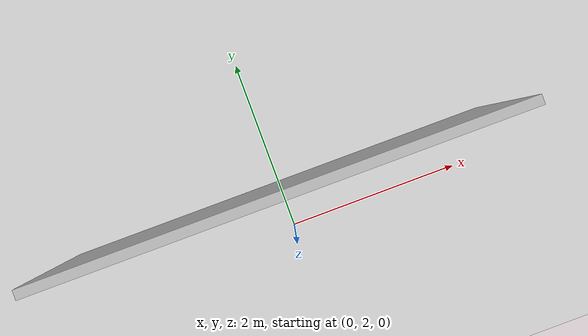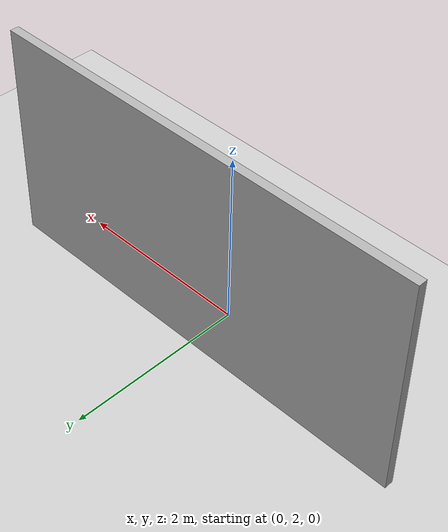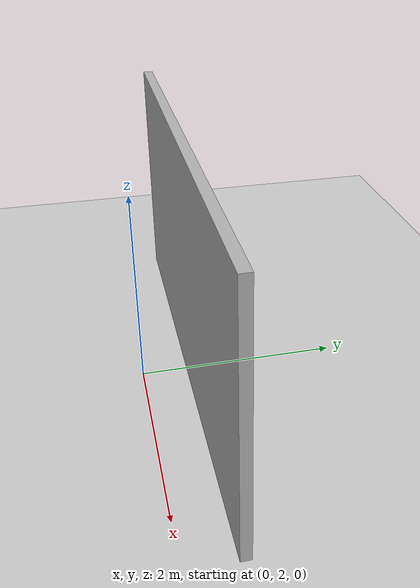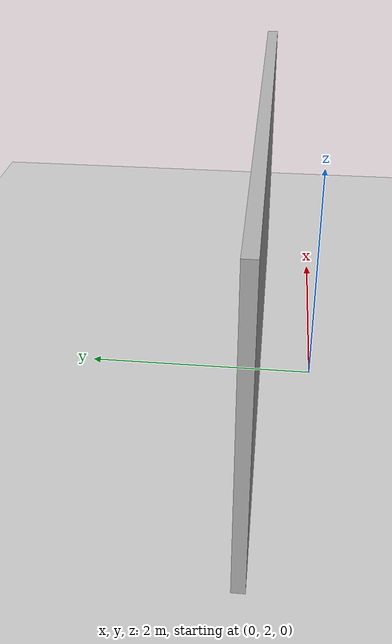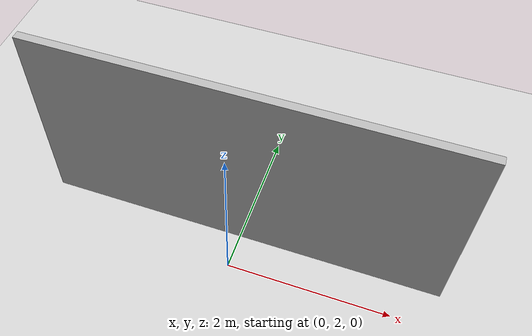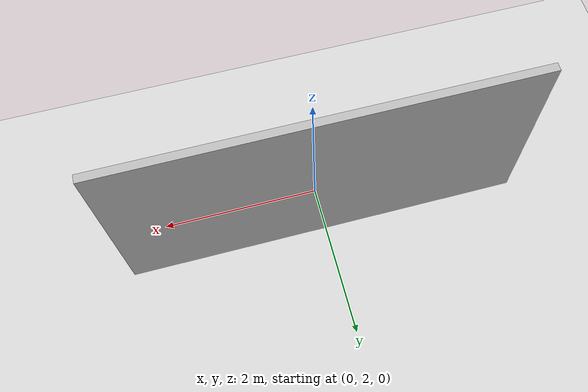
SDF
<?xml version="1.0" ?>
<sdf version="1.6">
  <world name="indoor_world">
    <include>
      <uri>model://ground_plane</uri>
    </include>
    <include>
      <uri>model://sun</uri>
    </include>
    <!-- Add walls, obstacles, and furniture models here to simulate an indoor environment -->
    <model name="wall_1">
      <static>true</static>
      <link name="link">
        <collision name="collision">
          <geometry>
            <box>
              <size>5 0.1 2.5</size>
            </box>
          </geometry>
        </collision>
        <visual name="visual">
          <geometry>
            <box>
              <size>5 0.1 2.5</size>
            </box>
          </geometry>
          <material>
            <ambient>0.7 0.7 0.7 1</ambient>
            <diffuse>0.7 0.7 0.7 1</diffuse>
          </material>
        </visual>
        <pose>0 2.5 1.25 0 0 0</pose>
      </link>
    </model>
    <!-- Additional walls and obstacles can be added similarly -->
  </world>
</sdf>
